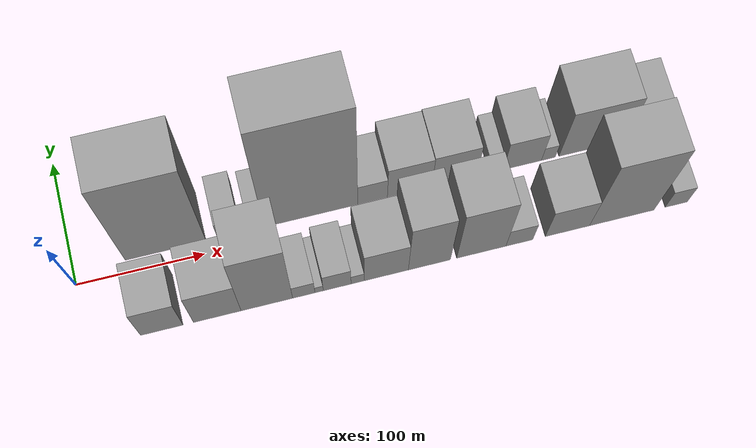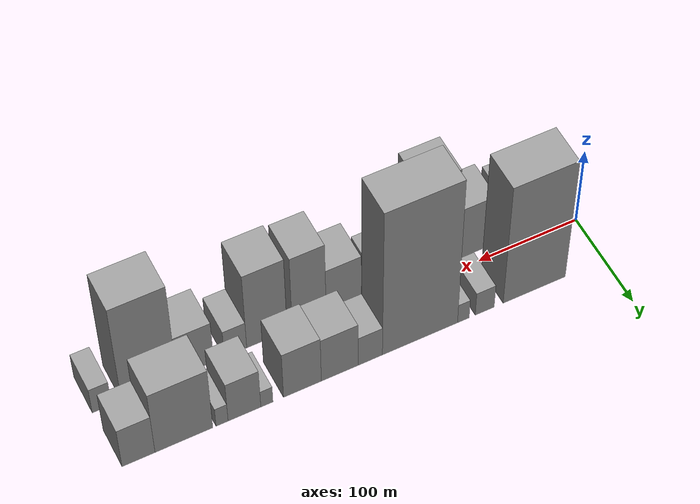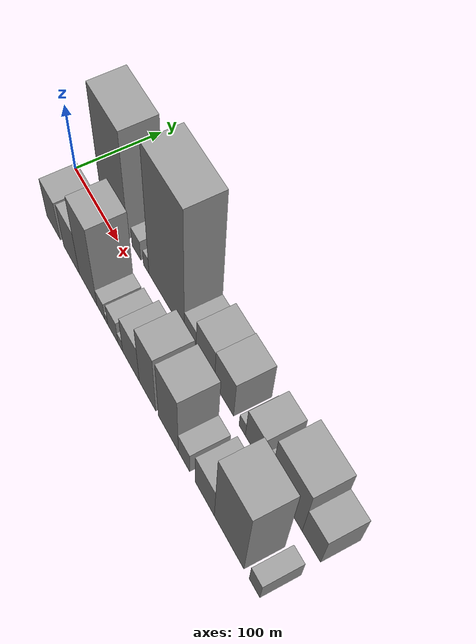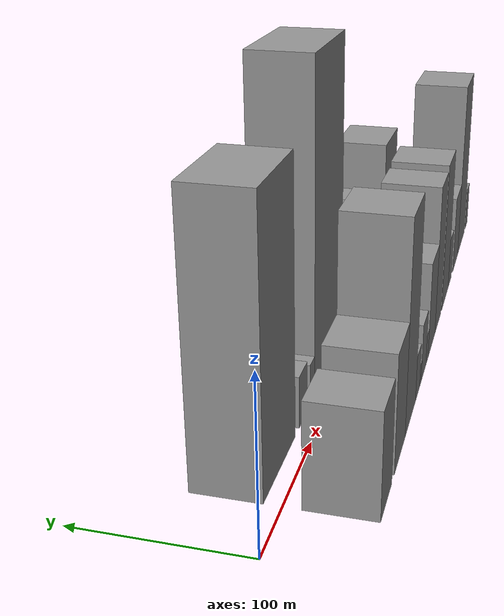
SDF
<sdf version="1.6">
 <world name="default">
  <scene>
   <sky><clouds><speed>12</speed></clouds></sky>
   <ambient>0.4 0.4 0.4 1</ambient>
   <background>0.7 0.7 0.7 1</background>
   <shadows>1</shadows>
  </scene>
  <gravity>0 0 -9.8066</gravity>
  <magnetic_field>6e-06 2.3e-05 -4.2e-05</magnetic_field>
  <physics default="0" name="default_physics" type="ode">
   <ode>
    <solver>
     <type>quick</type>
     <iters>10</iters>
     <sor>1.0</sor>
     <use_dynamic_moi_rescaling>0</use_dynamic_moi_rescaling>
    </solver>
    <constraints>
     <cfm>0</cfm>
     <erp>0.2</erp>
     <contact_max_correcting_vel>100</contact_max_correcting_vel>
     <contact_surface_layer>0.001</contact_surface_layer>
    </constraints>
   </ode>
   <max_step_size>0.004</max_step_size>
   <real_time_factor>1</real_time_factor>
   <real_time_update_rate>250</real_time_update_rate>
  </physics>
  <light name="sun" type="directional">
   <pose>0 0 10 0 0 0</pose>
   <diffuse>0.8 0.8 0.8 1</diffuse>
   <specular>0.2 0.2 0.2 1</specular>
   <attenuation>
    <range>1000</range>
    <constant>0.9</constant>
    <linear>0.01</linear>
    <quadratic>0.001</quadratic>
   </attenuation>
   <direction>-0.5 0.1 -0.9</direction>
  </light>
  <model name="building_1">
   <static>1</static>
   <pose>71.5138 30.0000 0 0.000000 0.000000 1.570796</pose>
   <link name="link">
    <pose>0 0 84.00 0 0 0</pose>
    <collision name="collision"><geometry><box><size>40.0000 63.0276 168.0000</size></box></geometry></collision>
    <visual name="visual">
     <cast_shadows>0</cast_shadows>
     <geometry><box><size>40.0000 63.0276 168.0000</size></box></geometry>
     <material>
      <script>
       <uri>model://grey_wall/materials/scripts</uri>
       <uri>model://grey_wall/materials/textures</uri>
       <name>vrc/grey_wall</name>
      </script>
     </material>
    </visual>
   </link>
  </model>
  <model name="building_2">
   <static>1</static>
   <pose>121.5319 30.0000 0 0.000000 0.000000 1.570796</pose>
   <link name="link">
    <pose>0 0 16.50 0 0 0</pose>
    <collision name="collision"><geometry><box><size>40.0000 19.0087 33.0000</size></box></geometry></collision>
    <visual name="visual">
     <cast_shadows>0</cast_shadows>
     <geometry><box><size>40.0000 19.0087 33.0000</size></box></geometry>
     <material>
      <script>
       <uri>model://grey_wall/materials/scripts</uri>
       <uri>model://grey_wall/materials/textures</uri>
       <name>vrc/grey_wall</name>
      </script>
     </material>
    </visual>
   </link>
  </model>
  <model name="building_3">
   <static>1</static>
   <pose>142.8799 30.0000 0 0.000000 0.000000 1.570796</pose>
   <link name="link">
    <pose>0 0 13.50 0 0 0</pose>
    <collision name="collision"><geometry><box><size>40.0000 11.6872 27.0000</size></box></geometry></collision>
    <visual name="visual">
     <cast_shadows>0</cast_shadows>
     <geometry><box><size>40.0000 11.6872 27.0000</size></box></geometry>
     <material>
      <script>
       <uri>model://grey_wall/materials/scripts</uri>
       <uri>model://grey_wall/materials/textures</uri>
       <name>vrc/grey_wall</name>
      </script>
     </material>
    </visual>
   </link>
  </model>
  <model name="building_4">
   <static>1</static>
   <pose>185.7713 30.0000 0 0.000000 0.000000 1.570796</pose>
   <link name="link">
    <pose>0 0 103.50 0 0 0</pose>
    <collision name="collision"><geometry><box><size>40.0000 74.0958 207.0000</size></box></geometry></collision>
    <visual name="visual">
     <cast_shadows>0</cast_shadows>
     <geometry><box><size>40.0000 74.0958 207.0000</size></box></geometry>
     <material>
      <script>
       <uri>model://grey_wall/materials/scripts</uri>
       <uri>model://grey_wall/materials/textures</uri>
       <name>vrc/grey_wall</name>
      </script>
     </material>
    </visual>
   </link>
  </model>
  <model name="building_5">
   <static>1</static>
   <pose>234.6052 30.0000 0 0.000000 0.000000 1.570796</pose>
   <link name="link">
    <pose>0 0 21.00 0 0 0</pose>
    <collision name="collision"><geometry><box><size>40.0000 23.5720 42.0000</size></box></geometry></collision>
    <visual name="visual">
     <cast_shadows>0</cast_shadows>
     <geometry><box><size>40.0000 23.5720 42.0000</size></box></geometry>
     <material>
      <script>
       <uri>model://grey_wall/materials/scripts</uri>
       <uri>model://grey_wall/materials/textures</uri>
       <name>vrc/grey_wall</name>
      </script>
     </material>
    </visual>
   </link>
  </model>
  <model name="building_6">
   <static>1</static>
   <pose>264.1800 30.0000 0 0.000000 0.000000 1.570796</pose>
   <link name="link">
    <pose>0 0 31.50 0 0 0</pose>
    <collision name="collision"><geometry><box><size>40.0000 35.5776 63.0000</size></box></geometry></collision>
    <visual name="visual">
     <cast_shadows>0</cast_shadows>
     <geometry><box><size>40.0000 35.5776 63.0000</size></box></geometry>
     <material>
      <script>
       <uri>model://grey_wall/materials/scripts</uri>
       <uri>model://grey_wall/materials/textures</uri>
       <name>vrc/grey_wall</name>
      </script>
     </material>
    </visual>
   </link>
  </model>
  <model name="building_7">
   <static>1</static>
   <pose>300.0533 30.0000 0 0.000000 0.000000 1.570796</pose>
   <link name="link">
    <pose>0 0 33.00 0 0 0</pose>
    <collision name="collision"><geometry><box><size>40.0000 36.1690 66.0000</size></box></geometry></collision>
    <visual name="visual">
     <cast_shadows>0</cast_shadows>
     <geometry><box><size>40.0000 36.1690 66.0000</size></box></geometry>
     <material>
      <script>
       <uri>model://grey_wall/materials/scripts</uri>
       <uri>model://grey_wall/materials/textures</uri>
       <name>vrc/grey_wall</name>
      </script>
     </material>
    </visual>
   </link>
  </model>
  <model name="building_8">
   <static>1</static>
   <pose>333.9253 30.0000 0 0.000000 0.000000 1.570796</pose>
   <link name="link">
    <pose>0 0 12.00 0 0 0</pose>
    <collision name="collision"><geometry><box><size>40.0000 11.5750 24.0000</size></box></geometry></collision>
    <visual name="visual">
     <cast_shadows>0</cast_shadows>
     <geometry><box><size>40.0000 11.5750 24.0000</size></box></geometry>
     <material>
      <script>
       <uri>model://grey_wall/materials/scripts</uri>
       <uri>model://grey_wall/materials/textures</uri>
       <name>vrc/grey_wall</name>
      </script>
     </material>
    </visual>
   </link>
  </model>
  <model name="building_9">
   <static>1</static>
   <pose>355.1295 30.0000 0 0.000000 0.000000 1.570796</pose>
   <link name="link">
    <pose>0 0 28.50 0 0 0</pose>
    <collision name="collision"><geometry><box><size>40.0000 30.8336 57.0000</size></box></geometry></collision>
    <visual name="visual">
     <cast_shadows>0</cast_shadows>
     <geometry><box><size>40.0000 30.8336 57.0000</size></box></geometry>
     <material>
      <script>
       <uri>model://grey_wall/materials/scripts</uri>
       <uri>model://grey_wall/materials/textures</uri>
       <name>vrc/grey_wall</name>
      </script>
     </material>
    </visual>
   </link>
  </model>
  <model name="building_10">
   <static>1</static>
   <pose>376.1941 30.0000 0 0.000000 0.000000 1.570796</pose>
   <link name="link">
    <pose>0 0 13.50 0 0 0</pose>
    <collision name="collision"><geometry><box><size>40.0000 11.2956 27.0000</size></box></geometry></collision>
    <visual name="visual">
     <cast_shadows>0</cast_shadows>
     <geometry><box><size>40.0000 11.2956 27.0000</size></box></geometry>
     <material>
      <script>
       <uri>model://grey_wall/materials/scripts</uri>
       <uri>model://grey_wall/materials/textures</uri>
       <name>vrc/grey_wall</name>
      </script>
     </material>
    </visual>
   </link>
  </model>
  <model name="building_11">
   <static>1</static>
   <pose>411.7170 30.0000 0 0.000000 0.000000 1.570796</pose>
   <link name="link">
    <pose>0 0 45.00 0 0 0</pose>
    <collision name="collision"><geometry><box><size>40.0000 53.7501 90.0000</size></box></geometry></collision>
    <visual name="visual">
     <cast_shadows>0</cast_shadows>
     <geometry><box><size>40.0000 53.7501 90.0000</size></box></geometry>
     <material>
      <script>
       <uri>model://grey_wall/materials/scripts</uri>
       <uri>model://grey_wall/materials/textures</uri>
       <name>vrc/grey_wall</name>
      </script>
     </material>
    </visual>
   </link>
  </model>
  <model name="building_12">
   <static>1</static>
   <pose>453.7512 30.0000 0 0.000000 0.000000 1.570796</pose>
   <link name="link">
    <pose>0 0 28.50 0 0 0</pose>
    <collision name="collision"><geometry><box><size>40.0000 30.3184 57.0000</size></box></geometry></collision>
    <visual name="visual">
     <cast_shadows>0</cast_shadows>
     <geometry><box><size>40.0000 30.3184 57.0000</size></box></geometry>
     <material>
      <script>
       <uri>model://grey_wall/materials/scripts</uri>
       <uri>model://grey_wall/materials/textures</uri>
       <name>vrc/grey_wall</name>
      </script>
     </material>
    </visual>
   </link>
  </model>
  <model name="building_13">
   <static>1</static>
   <pose>56.2666 -30.0000 0 0.000000 0.000000 1.570796</pose>
   <link name="link">
    <pose>0 0 31.50 0 0 0</pose>
    <collision name="collision"><geometry><box><size>40.0000 32.5331 63.0000</size></box></geometry></collision>
    <visual name="visual">
     <cast_shadows>0</cast_shadows>
     <geometry><box><size>40.0000 32.5331 63.0000</size></box></geometry>
     <material>
      <script>
       <uri>model://grey_wall/materials/scripts</uri>
       <uri>model://grey_wall/materials/textures</uri>
       <name>vrc/grey_wall</name>
      </script>
     </material>
    </visual>
   </link>
  </model>
  <model name="building_14">
   <static>1</static>
   <pose>98.8901 -30.0000 0 0.000000 0.000000 1.570796</pose>
   <link name="link">
    <pose>0 0 36.00 0 0 0</pose>
    <collision name="collision"><geometry><box><size>40.0000 36.7139 72.0000</size></box></geometry></collision>
    <visual name="visual">
     <cast_shadows>0</cast_shadows>
     <geometry><box><size>40.0000 36.7139 72.0000</size></box></geometry>
     <material>
      <script>
       <uri>model://grey_wall/materials/scripts</uri>
       <uri>model://grey_wall/materials/textures</uri>
       <name>vrc/grey_wall</name>
      </script>
     </material>
    </visual>
   </link>
  </model>
  <model name="building_15">
   <static>1</static>
   <pose>137.1779 -30.0000 0 0.000000 0.000000 1.570796</pose>
   <link name="link">
    <pose>0 0 66.00 0 0 0</pose>
    <collision name="collision"><geometry><box><size>40.0000 39.8617 132.0000</size></box></geometry></collision>
    <visual name="visual">
     <cast_shadows>0</cast_shadows>
     <geometry><box><size>40.0000 39.8617 132.0000</size></box></geometry>
     <material>
      <script>
       <uri>model://grey_wall/materials/scripts</uri>
       <uri>model://grey_wall/materials/textures</uri>
       <name>vrc/grey_wall</name>
      </script>
     </material>
    </visual>
   </link>
  </model>
  <model name="building_16">
   <static>1</static>
   <pose>165.7692 -30.0000 0 0.000000 0.000000 1.570796</pose>
   <link name="link">
    <pose>0 0 15.00 0 0 0</pose>
    <collision name="collision"><geometry><box><size>40.0000 17.3209 30.0000</size></box></geometry></collision>
    <visual name="visual">
     <cast_shadows>0</cast_shadows>
     <geometry><box><size>40.0000 17.3209 30.0000</size></box></geometry>
     <material>
      <script>
       <uri>model://grey_wall/materials/scripts</uri>
       <uri>model://grey_wall/materials/textures</uri>
       <name>vrc/grey_wall</name>
      </script>
     </material>
    </visual>
   </link>
  </model>
  <model name="building_17">
   <static>1</static>
   <pose>177.6760 -30.0000 0 0.000000 0.000000 1.570796</pose>
   <link name="link">
    <pose>0 0 7.50 0 0 0</pose>
    <collision name="collision"><geometry><box><size>40.0000 6.4927 15.0000</size></box></geometry></collision>
    <visual name="visual">
     <cast_shadows>0</cast_shadows>
     <geometry><box><size>40.0000 6.4927 15.0000</size></box></geometry>
     <material>
      <script>
       <uri>model://grey_wall/materials/scripts</uri>
       <uri>model://grey_wall/materials/textures</uri>
       <name>vrc/grey_wall</name>
      </script>
     </material>
    </visual>
   </link>
  </model>
  <model name="building_18">
   <static>1</static>
   <pose>191.7730 -30.0000 0 0.000000 0.000000 1.570796</pose>
   <link name="link">
    <pose>0 0 19.50 0 0 0</pose>
    <collision name="collision"><geometry><box><size>40.0000 21.7013 39.0000</size></box></geometry></collision>
    <visual name="visual">
     <cast_shadows>0</cast_shadows>
     <geometry><box><size>40.0000 21.7013 39.0000</size></box></geometry>
     <material>
      <script>
       <uri>model://grey_wall/materials/scripts</uri>
       <uri>model://grey_wall/materials/textures</uri>
       <name>vrc/grey_wall</name>
      </script>
     </material>
    </visual>
   </link>
  </model>
  <model name="building_19">
   <static>1</static>
   <pose>207.7393 -30.0000 0 0.000000 0.000000 1.570796</pose>
   <link name="link">
    <pose>0 0 10.50 0 0 0</pose>
    <collision name="collision"><geometry><box><size>40.0000 10.2315 21.0000</size></box></geometry></collision>
    <visual name="visual">
     <cast_shadows>0</cast_shadows>
     <geometry><box><size>40.0000 10.2315 21.0000</size></box></geometry>
     <material>
      <script>
       <uri>model://grey_wall/materials/scripts</uri>
       <uri>model://grey_wall/materials/textures</uri>
       <name>vrc/grey_wall</name>
      </script>
     </material>
    </visual>
   </link>
  </model>
  <model name="building_20">
   <static>1</static>
   <pose>230.1710 -30.0000 0 0.000000 0.000000 1.570796</pose>
   <link name="link">
    <pose>0 0 33.00 0 0 0</pose>
    <collision name="collision"><geometry><box><size>40.0000 34.6318 66.0000</size></box></geometry></collision>
    <visual name="visual">
     <cast_shadows>0</cast_shadows>
     <geometry><box><size>40.0000 34.6318 66.0000</size></box></geometry>
     <material>
      <script>
       <uri>model://grey_wall/materials/scripts</uri>
       <uri>model://grey_wall/materials/textures</uri>
       <name>vrc/grey_wall</name>
      </script>
     </material>
    </visual>
   </link>
  </model>
  <model name="building_21">
   <static>1</static>
   <pose>264.0801 -30.0000 0 0.000000 0.000000 1.570796</pose>
   <link name="link">
    <pose>0 0 52.50 0 0 0</pose>
    <collision name="collision"><geometry><box><size>40.0000 33.1863 105.0000</size></box></geometry></collision>
    <visual name="visual">
     <cast_shadows>0</cast_shadows>
     <geometry><box><size>40.0000 33.1863 105.0000</size></box></geometry>
     <material>
      <script>
       <uri>model://grey_wall/materials/scripts</uri>
       <uri>model://grey_wall/materials/textures</uri>
       <name>vrc/grey_wall</name>
      </script>
     </material>
    </visual>
   </link>
  </model>
  <model name="building_22">
   <static>1</static>
   <pose>305.1763 -30.0000 0 0.000000 0.000000 1.570796</pose>
   <link name="link">
    <pose>0 0 54.00 0 0 0</pose>
    <collision name="collision"><geometry><box><size>40.0000 39.0061 108.0000</size></box></geometry></collision>
    <visual name="visual">
     <cast_shadows>0</cast_shadows>
     <geometry><box><size>40.0000 39.0061 108.0000</size></box></geometry>
     <material>
      <script>
       <uri>model://grey_wall/materials/scripts</uri>
       <uri>model://grey_wall/materials/textures</uri>
       <name>vrc/grey_wall</name>
      </script>
     </material>
    </visual>
   </link>
  </model>
  <model name="building_23">
   <static>1</static>
   <pose>335.3879 -30.0000 0 0.000000 0.000000 1.570796</pose>
   <link name="link">
    <pose>0 0 19.50 0 0 0</pose>
    <collision name="collision"><geometry><box><size>40.0000 21.4172 39.0000</size></box></geometry></collision>
    <visual name="visual">
     <cast_shadows>0</cast_shadows>
     <geometry><box><size>40.0000 21.4172 39.0000</size></box></geometry>
     <material>
      <script>
       <uri>model://grey_wall/materials/scripts</uri>
       <uri>model://grey_wall/materials/textures</uri>
       <name>vrc/grey_wall</name>
      </script>
     </material>
    </visual>
   </link>
  </model>
  <model name="building_24">
   <static>1</static>
   <pose>373.7685 -30.0000 0 0.000000 0.000000 1.570796</pose>
   <link name="link">
    <pose>0 0 30.00 0 0 0</pose>
    <collision name="collision"><geometry><box><size>40.0000 35.3440 60.0000</size></box></geometry></collision>
    <visual name="visual">
     <cast_shadows>0</cast_shadows>
     <geometry><box><size>40.0000 35.3440 60.0000</size></box></geometry>
     <material>
      <script>
       <uri>model://grey_wall/materials/scripts</uri>
       <uri>model://grey_wall/materials/textures</uri>
       <name>vrc/grey_wall</name>
      </script>
     </material>
    </visual>
   </link>
  </model>
  <model name="building_25">
   <static>1</static>
   <pose>417.4669 -30.0000 0 0.000000 0.000000 1.570796</pose>
   <link name="link">
    <pose>0 0 69.00 0 0 0</pose>
    <collision name="collision"><geometry><box><size>40.0000 52.0527 138.0000</size></box></geometry></collision>
    <visual name="visual">
     <cast_shadows>0</cast_shadows>
     <geometry><box><size>40.0000 52.0527 138.0000</size></box></geometry>
     <material>
      <script>
       <uri>model://grey_wall/materials/scripts</uri>
       <uri>model://grey_wall/materials/textures</uri>
       <name>vrc/grey_wall</name>
      </script>
     </material>
    </visual>
   </link>
  </model>
  <model name="building_26">
   <static>1</static>
   <pose>461.4965 -30.0000 0 0.000000 0.000000 1.570796</pose>
   <link name="link">
    <pose>0 0 18.00 0 0 0</pose>
    <collision name="collision"><geometry><box><size>40.0000 18.0065 36.0000</size></box></geometry></collision>
    <visual name="visual">
     <cast_shadows>0</cast_shadows>
     <geometry><box><size>40.0000 18.0065 36.0000</size></box></geometry>
     <material>
      <script>
       <uri>model://grey_wall/materials/scripts</uri>
       <uri>model://grey_wall/materials/textures</uri>
       <name>vrc/grey_wall</name>
      </script>
     </material>
    </visual>
   </link>
  </model>
 </world>
</sdf>
